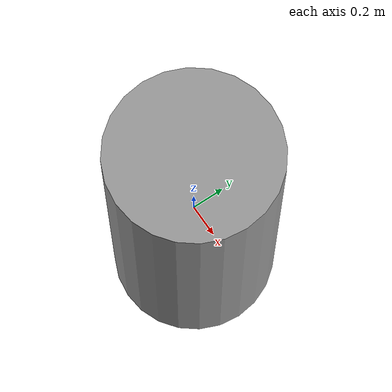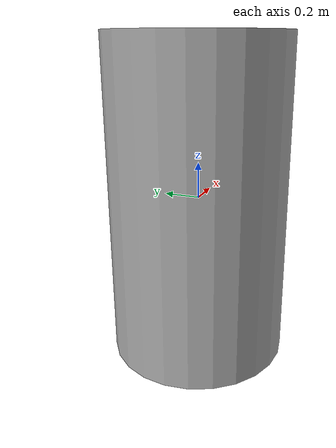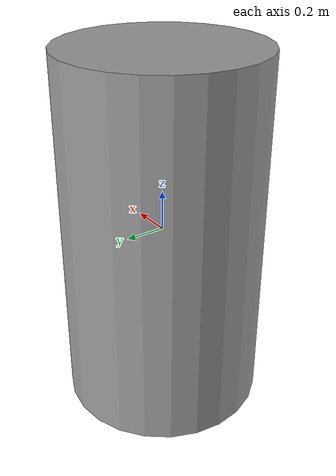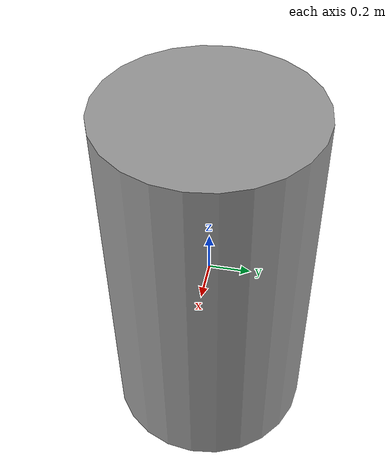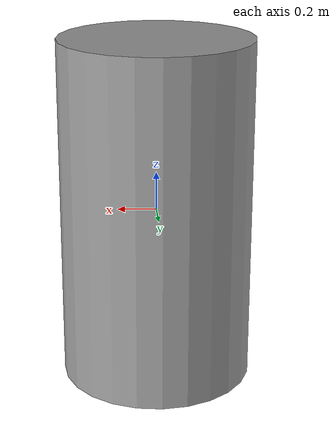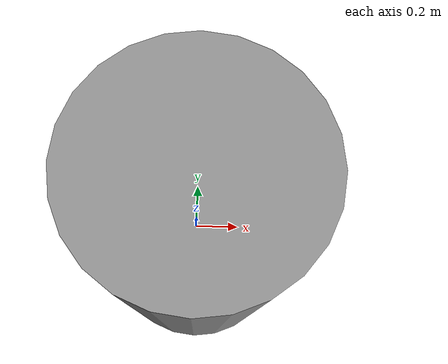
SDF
<?xml version='1.0'?>
<sdf version='1.6'>
  <model name='cylinder'>
    <static>true</static>
    <link name='link'>
      <visual name='visual'>
        <geometry>
          <cylinder>
            <radius>0.5</radius>
            <length>1.8</length>
          </cylinder>
        </geometry>
        <material>
          <script>
            <uri>file://media/materials/scripts/gazebo.material</uri>
            <name>Gazebo/Grey</name>
          </script>
        </material>
      </visual>
      <collision name='collision'>
        <geometry>
          <cylinder>
            <radius>0.5</radius>
            <length>1.8</length>
          </cylinder>
        </geometry>
      </collision>
    </link>
  </model>
</sdf>
